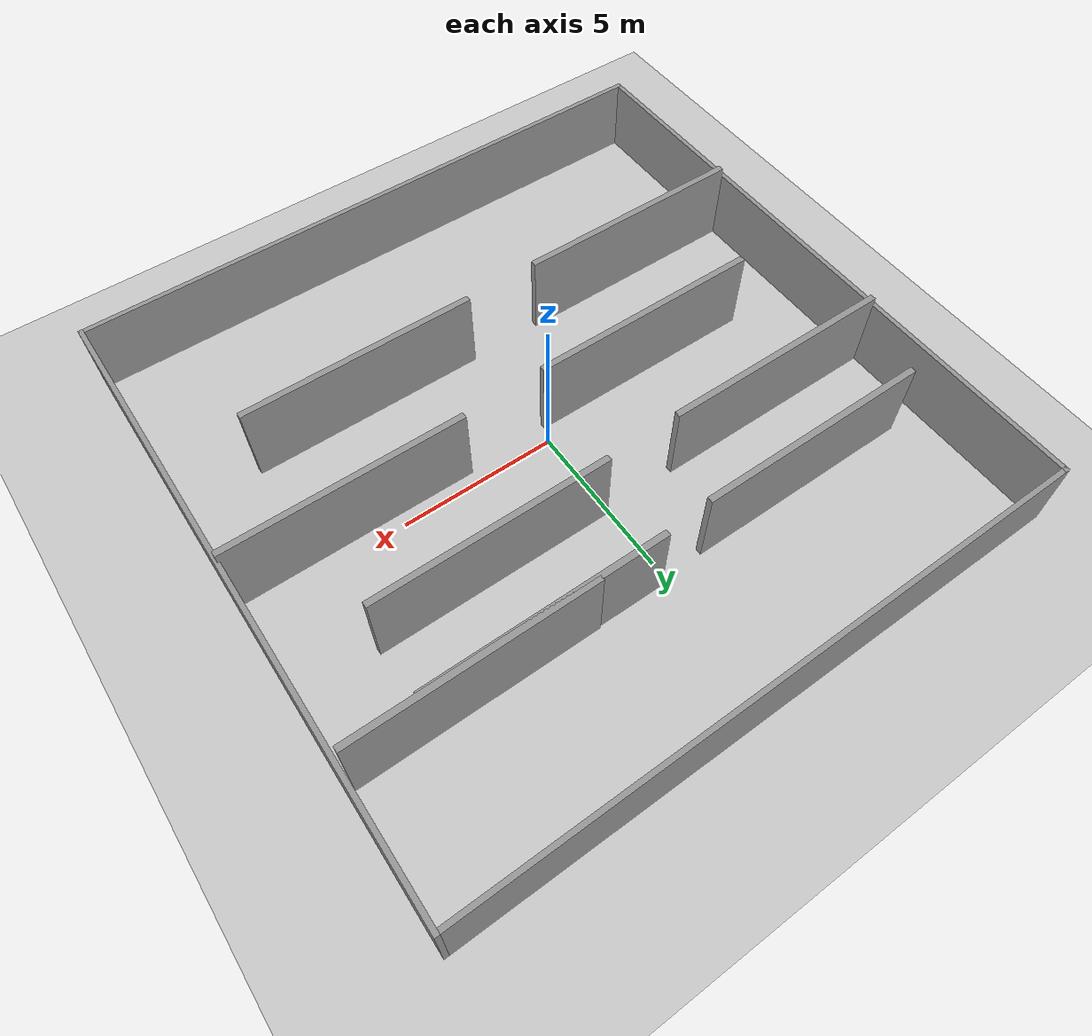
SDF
<sdf version="1.6">
 <world name="default">
  <light name="sun" type="directional">
   <pose>0 0 1000 0 -0 0</pose>
   <diffuse>0.8 0.8 0.8 1</diffuse>
   <specular>0.1 0.1 0.1 1</specular>
   <attenuation>
    <range>1000</range>
    <constant>0.9</constant>
    <linear>0.01</linear>
    <quadratic>0.001</quadratic>
   </attenuation>
   <direction>-0.5 0.5 -1</direction>
  </light>
  <model name="ground_plane">
   <static>1</static>
   <link name="link">
    <collision name="collision">
     <geometry><plane><normal>0 0 1</normal><size>100 100</size></plane></geometry>
     <surface><friction><ode><mu>100</mu><mu2>50</mu2></ode></friction></surface>
    </collision>
    <visual name="visual">
     <cast_shadows>0</cast_shadows>
     <geometry><plane><normal>0 0 1</normal><size>100 100</size></plane></geometry>
     <material>
      <ambient>1 1 1 1</ambient>
      <diffuse>0.8 0.8 0.8 1</diffuse>
      <specular>0.01 0.01 0.01 1</specular>
     </material>
    </visual>
   </link>
  </model>
  <gravity>0 0 -9.8</gravity>
  <magnetic_field>6e-06 2.3e-05 -4.2e-05</magnetic_field>
  <atmosphere type="adiabatic"/>
  <physics name="default_physics" default="0" type="ode">
   <max_step_size>0.001</max_step_size>
   <real_time_factor>1</real_time_factor>
   <real_time_update_rate>1000</real_time_update_rate>
  </physics>
  <scene><ambient>0.4 0.4 0.4 1</ambient><background>0.7 0.7 0.7 1</background><shadows>1</shadows></scene>
  <spherical_coordinates>
   <surface_model>EARTH_WGS84</surface_model>
   <latitude_deg>0</latitude_deg>
   <longitude_deg>0</longitude_deg>
   <elevation>0</elevation>
   <heading_deg>0</heading_deg>
  </spherical_coordinates>
  <plugin name="gazebo_occupancy_map" filename="libgazebo_2Dmap_plugin.so">
   <map_resolution>0.05</map_resolution>
   <map_topic>generated_map</map_topic>
   <map_height>0.01</map_height>
   <map_size_x>50</map_size_x>
   <map_size_y>50</map_size_y>
  </plugin>
  <model name="NamedLocations">
   <static>1</static>
   <link name="DefaultStart"><pose>8.5 0 0 0 -0 3.14</pose></link>
  </model>
  <model name="20x20_walls">
   <pose>0.044518 0.1761 0 0 -0 0</pose>
   <link name="Wall_1">
    <collision name="Wall_1_Collision">
     <geometry><box><size>20 0.15 2.5</size></box></geometry>
     <pose>0 0 1.25 0 -0 0</pose>
    </collision>
    <visual name="Wall_1_Visual">
     <pose>0 0 1.25 0 -0 0</pose>
     <geometry><box><size>20 0.15 2.5</size></box></geometry>
     <material>
      <script><uri>file://media/materials/scripts/gazebo.material</uri><name>Gazebo/Grey</name></script>
      <ambient>0.976471 0.992157 1 1</ambient>
     </material>
     <meta><layer>0</layer></meta>
    </visual>
    <pose>0 9.925 0 0 -0 0</pose>
   </link>
   <link name="Wall_3">
    <collision name="Wall_3_Collision">
     <geometry><box><size>20 0.15 2.5</size></box></geometry>
     <pose>0 0 1.25 0 -0 0</pose>
    </collision>
    <visual name="Wall_3_Visual">
     <pose>0 0 1.25 0 -0 0</pose>
     <geometry><box><size>20 0.15 2.5</size></box></geometry>
     <material>
      <script><uri>file://media/materials/scripts/gazebo.material</uri><name>Gazebo/Grey</name></script>
      <ambient>0.976471 0.992157 1 1</ambient>
     </material>
     <meta><layer>0</layer></meta>
    </visual>
    <pose>9.925 0 0 0 0 -1.5708</pose>
   </link>
   <link name="Wall_4">
    <collision name="Wall_4_Collision">
     <geometry><box><size>20 0.15 2.5</size></box></geometry>
     <pose>0 0 1.25 0 -0 0</pose>
    </collision>
    <visual name="Wall_4_Visual">
     <pose>0 0 1.25 0 -0 0</pose>
     <geometry><box><size>20 0.15 2.5</size></box></geometry>
     <material>
      <script><uri>file://media/materials/scripts/gazebo.material</uri><name>Gazebo/Grey</name></script>
      <ambient>0.976471 0.992157 1 1</ambient>
     </material>
     <meta><layer>0</layer></meta>
    </visual>
    <pose>0 -9.925 0 0 -0 3.14159</pose>
   </link>
   <link name="Wall_5">
    <collision name="Wall_5_Collision">
     <geometry><box><size>20 0.15 2.5</size></box></geometry>
     <pose>0 0 1.25 0 -0 0</pose>
    </collision>
    <visual name="Wall_5_Visual">
     <pose>0 0 1.25 0 -0 0</pose>
     <geometry><box><size>20 0.15 2.5</size></box></geometry>
     <material>
      <script><uri>file://media/materials/scripts/gazebo.material</uri><name>Gazebo/Grey</name></script>
      <ambient>0.976471 0.992157 1 1</ambient>
     </material>
     <meta><layer>0</layer></meta>
    </visual>
    <pose>-9.925 0 0 0 -0 1.5708</pose>
   </link>
   <static>1</static>
  </model>
  <model name="grey_wall_clone">
   <static>1</static>
   <link name="link">
    <pose>0 0 1.4 0 -0 0</pose>
    <collision name="collision"><geometry><box><size>7.5 0.2 2.8</size></box></geometry></collision>
    <visual name="visual">
     <cast_shadows>0</cast_shadows>
     <geometry><box><size>7.5 0.2 2.8</size></box></geometry>
     <material>
      <script>
       <uri>model://grey_wall/materials/scripts</uri>
       <uri>model://grey_wall/materials/textures</uri>
       <name>vrc/grey_wall</name>
      </script>
     </material>
    </visual>
   </link>
   <pose>3.93906 5.58078 0 0 -0 0</pose>
  </model>
  <model name="grey_wall_clone_0">
   <static>1</static>
   <link name="link">
    <pose>0 0 1.4 0 -0 0</pose>
    <collision name="collision"><geometry><box><size>7.5 0.2 2.8</size></box></geometry></collision>
    <visual name="visual">
     <cast_shadows>0</cast_shadows>
     <geometry><box><size>7.5 0.2 2.8</size></box></geometry>
     <material>
      <script>
       <uri>model://grey_wall/materials/scripts</uri>
       <uri>model://grey_wall/materials/textures</uri>
       <name>vrc/grey_wall</name>
      </script>
     </material>
    </visual>
   </link>
   <pose>-5.03723 5.45521 0 0 -0 0</pose>
  </model>
  <model name="grey_wall_clone_1">
   <static>1</static>
   <link name="link">
    <pose>0 0 1.4 0 -0 0</pose>
    <collision name="collision"><geometry><box><size>7.5 0.2 2.8</size></box></geometry></collision>
    <visual name="visual">
     <cast_shadows>0</cast_shadows>
     <geometry><box><size>7.5 0.2 2.8</size></box></geometry>
     <material>
      <script>
       <uri>model://grey_wall/materials/scripts</uri>
       <uri>model://grey_wall/materials/textures</uri>
       <name>vrc/grey_wall</name>
      </script>
     </material>
    </visual>
   </link>
   <pose>-6.07831 2.83159 0 0 -0 0</pose>
  </model>
  <model name="grey_wall_clone_2">
   <static>1</static>
   <link name="link">
    <pose>0 0 1.4 0 -0 0</pose>
    <collision name="collision"><geometry><box><size>7.5 0.2 2.8</size></box></geometry></collision>
    <visual name="visual">
     <cast_shadows>0</cast_shadows>
     <geometry><box><size>7.5 0.2 2.8</size></box></geometry>
     <material>
      <script>
       <uri>model://grey_wall/materials/scripts</uri>
       <uri>model://grey_wall/materials/textures</uri>
       <name>vrc/grey_wall</name>
      </script>
     </material>
    </visual>
   </link>
   <pose>3.78927 2.88901 0 0 -0 0</pose>
  </model>
  <model name="grey_wall_clone_3">
   <static>1</static>
   <link name="link">
    <pose>0 0 1.4 0 -0 0</pose>
    <collision name="collision"><geometry><box><size>7.5 0.2 2.8</size></box></geometry></collision>
    <visual name="visual">
     <cast_shadows>0</cast_shadows>
     <geometry><box><size>7.5 0.2 2.8</size></box></geometry>
     <material>
      <script>
       <uri>model://grey_wall/materials/scripts</uri>
       <uri>model://grey_wall/materials/textures</uri>
       <name>vrc/grey_wall</name>
      </script>
     </material>
    </visual>
   </link>
   <pose>6.08314 5.62782 0 0 -0 0</pose>
  </model>
  <model name="grey_wall_clone_4">
   <static>1</static>
   <link name="link">
    <pose>0 0 1.4 0 -0 0</pose>
    <collision name="collision"><geometry><box><size>7.5 0.2 2.8</size></box></geometry></collision>
    <visual name="visual">
     <cast_shadows>0</cast_shadows>
     <geometry><box><size>7.5 0.2 2.8</size></box></geometry>
     <material>
      <script>
       <uri>model://grey_wall/materials/scripts</uri>
       <uri>model://grey_wall/materials/textures</uri>
       <name>vrc/grey_wall</name>
      </script>
     </material>
    </visual>
   </link>
   <pose>6.20959 -0.519964 0 0 -0 0</pose>
  </model>
  <model name="grey_wall_clone_5">
   <static>1</static>
   <link name="link">
    <pose>0 0 1.4 0 -0 0</pose>
    <collision name="collision"><geometry><box><size>7.5 0.2 2.8</size></box></geometry></collision>
    <visual name="visual">
     <cast_shadows>0</cast_shadows>
     <geometry><box><size>7.5 0.2 2.8</size></box></geometry>
     <material>
      <script>
       <uri>model://grey_wall/materials/scripts</uri>
       <uri>model://grey_wall/materials/textures</uri>
       <name>vrc/grey_wall</name>
      </script>
     </material>
    </visual>
   </link>
   <pose>-3.94169 -0.612421 0 0 -0 0</pose>
  </model>
  <model name="grey_wall_clone_6">
   <static>1</static>
   <link name="link">
    <pose>0 0 1.4 0 -0 0</pose>
    <collision name="collision"><geometry><box><size>7.5 0.2 2.8</size></box></geometry></collision>
    <visual name="visual">
     <cast_shadows>0</cast_shadows>
     <geometry><box><size>7.5 0.2 2.8</size></box></geometry>
     <material>
      <script>
       <uri>model://grey_wall/materials/scripts</uri>
       <uri>model://grey_wall/materials/textures</uri>
       <name>vrc/grey_wall</name>
      </script>
     </material>
    </visual>
   </link>
   <pose>-6.05733 -4.11392 0 0 -0 0</pose>
  </model>
  <model name="grey_wall_clone_7">
   <static>1</static>
   <link name="link">
    <pose>0 0 1.4 0 -0 0</pose>
    <collision name="collision"><geometry><box><size>7.5 0.2 2.8</size></box></geometry></collision>
    <visual name="visual">
     <cast_shadows>0</cast_shadows>
     <geometry><box><size>7.5 0.2 2.8</size></box></geometry>
     <material>
      <script>
       <uri>model://grey_wall/materials/scripts</uri>
       <uri>model://grey_wall/materials/textures</uri>
       <name>vrc/grey_wall</name>
      </script>
     </material>
    </visual>
   </link>
   <pose>3.80998 -4.0732 0 0 -0 0</pose>
  </model>
 </world>
</sdf>
